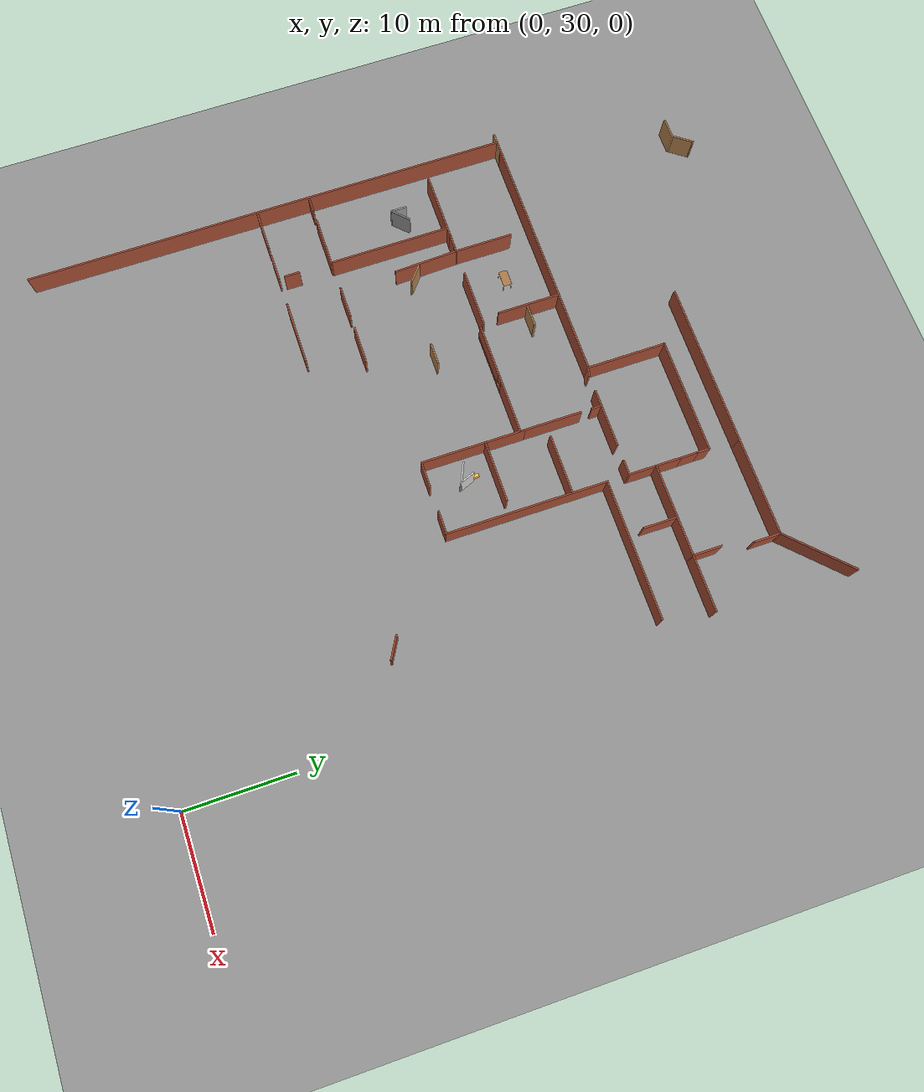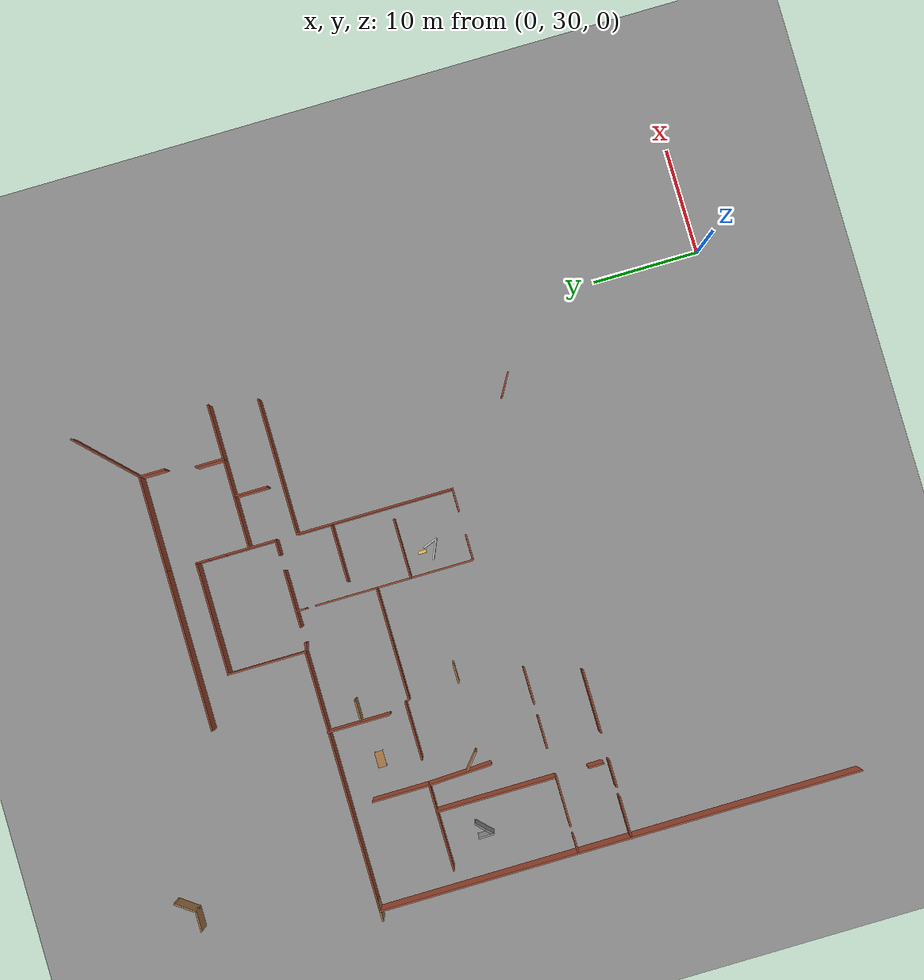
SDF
<sdf version="1.6">
 <world name="default">
  <model name="maze_rect_3">
   <pose>4e-06 -9.9e-05 0 0 -0 1.57001</pose>
   <link name="Wall_127">
    <collision name="Wall_127_Collision">
     <geometry><box><size>2.25 0.15 2.5</size></box></geometry>
     <pose>0 0 1.25 0 -0 0</pose>
    </collision>
    <visual name="Wall_127_Visual">
     <pose>0 0 1.25 0 -0 0</pose>
     <geometry><box><size>2.25 0.15 2.5</size></box></geometry>
     <material>
      <script><uri>file://media/materials/scripts/gazebo.material</uri><name>Gazebo/Bricks</name></script>
      <ambient>1 1 1 1</ambient>
     </material>
     <meta><layer>0</layer></meta>
    </visual>
    <pose>50.7967 7.04052 0 0 -0 -2.0944</pose>
   </link>
   <static>1</static>
  </model>
  <model name="map_palace_v2_model_1">
   <pose>0 60 0 0 -0 0</pose>
   <link name="Wall_10">
    <collision name="Wall_10_Collision">
     <geometry><box><size>7.5 0.15 2.5</size></box></geometry>
     <pose>0 0 1.25 0 -0 0</pose>
    </collision>
    <visual name="Wall_10_Visual">
     <pose>0 0 1.25 0 -0 0</pose>
     <geometry><box><size>7.5 0.15 2.5</size></box></geometry>
     <material>
      <script><uri>file://media/materials/scripts/gazebo.material</uri><name>Gazebo/Bricks</name></script>
      <ambient>1 1 1 1</ambient>
     </material>
     <meta><layer>0</layer></meta>
    </visual>
    <pose>-25.5193 18.9225 0 0 -0 -1.5708</pose>
   </link>
   <link name="Wall_11">
    <collision name="Wall_11_Collision">
     <geometry><box><size>24.75 0.15 2.5</size></box></geometry>
     <pose>0 0 1.25 0 -0 0</pose>
    </collision>
    <visual name="Wall_11_Visual">
     <pose>0 0 1.25 0 -0 0</pose>
     <geometry><box><size>24.75 0.15 2.5</size></box></geometry>
     <material>
      <script><uri>file://media/materials/scripts/gazebo.material</uri><name>Gazebo/Bricks</name></script>
      <ambient>1 1 1 1</ambient>
     </material>
     <meta><layer>0</layer></meta>
    </visual>
    <pose>-37.8193 15.2475 0 0 -0 3.14159</pose>
   </link>
   <link name="Wall_12">
    <collision name="Wall_12_Collision">
     <geometry><box><size>46 0.15 2.5</size></box></geometry>
     <pose>0 0 1.25 0 -0 0</pose>
    </collision>
    <visual name="Wall_12_Visual">
     <pose>0 0 1.25 0 -0 0</pose>
     <geometry><box><size>46 0.15 2.5</size></box></geometry>
     <material>
      <script><uri>file://media/materials/scripts/gazebo.material</uri><name>Gazebo/Bricks</name></script>
      <ambient>1 1 1 1</ambient>
     </material>
     <meta><layer>0</layer></meta>
    </visual>
    <pose>-50.1193 -7.67754 0 0 -0 -1.5708</pose>
   </link>
   <link name="Wall_123">
    <collision name="Wall_123_Collision">
     <geometry><box><size>2.5 0.15 2.5</size></box></geometry>
     <pose>0 0 1.25 0 -0 0</pose>
    </collision>
    <visual name="Wall_123_Visual">
     <pose>0 0 1.25 0 -0 0</pose>
     <geometry><box><size>2.5 0.15 2.5</size></box></geometry>
     <material>
      <script><uri>file://media/materials/scripts/gazebo.material</uri><name>Gazebo/Bricks</name></script>
      <ambient>1 1 1 1</ambient>
     </material>
     <meta><layer>0</layer></meta>
    </visual>
    <pose>-44.0769 -8.67053 0 0 -0 3.14159</pose>
   </link>
   <link name="Wall_125">
    <collision name="Wall_125_Collision">
     <geometry><box><size>3.75 0.15 2.5</size></box></geometry>
     <pose>0 0 1.25 0 -0 0</pose>
    </collision>
    <visual name="Wall_125_Visual">
     <pose>0 0 1.25 0 -0 0</pose>
     <geometry><box><size>3.75 0.15 2.5</size></box></geometry>
     <material>
      <script><uri>file://media/materials/scripts/gazebo.material</uri><name>Gazebo/Bricks</name></script>
      <ambient>1 1 1 1</ambient>
     </material>
     <meta><layer>0</layer></meta>
    </visual>
    <pose>-48.152 -8.67053 0 0 -0 3.14159</pose>
   </link>
   <link name="Wall_132">
    <collision name="Wall_132_Collision">
     <geometry><box><size>1.5 0.15 2.5</size></box></geometry>
     <pose>0 0 1.25 0 -0 0</pose>
    </collision>
    <visual name="Wall_132_Visual">
     <pose>0 0 1.25 0 -0 0</pose>
     <geometry><box><size>1.5 0.15 2.5</size></box></geometry>
     <material>
      <script><uri>file://media/materials/scripts/gazebo.material</uri><name>Gazebo/Bricks</name></script>
      <ambient>1 1 1 1</ambient>
     </material>
     <meta><layer>0</layer></meta>
    </visual>
    <pose>-42.9077 -7.40915 0 0 -0 1.5708</pose>
   </link>
   <link name="Wall_136">
    <collision name="Wall_136_Collision">
     <geometry><box><size>4.75 0.15 2.5</size></box></geometry>
     <pose>0 0 1.25 0 -0 0</pose>
    </collision>
    <visual name="Wall_136_Visual">
     <pose>0 0 1.25 0 -0 0</pose>
     <geometry><box><size>4.75 0.15 2.5</size></box></geometry>
     <material>
      <script><uri>file://media/materials/scripts/gazebo.material</uri><name>Gazebo/Bricks</name></script>
      <ambient>1 1 1 1</ambient>
     </material>
     <meta><layer>0</layer></meta>
    </visual>
    <pose>-45.2077 -3.61102 0 0 -0 3.14159</pose>
   </link>
   <link name="Wall_138">
    <collision name="Wall_138_Collision">
     <geometry><box><size>1.5 0.15 2.5</size></box></geometry>
     <pose>0 0 1.25 0 -0 0</pose>
    </collision>
    <visual name="Wall_138_Visual">
     <pose>0 0 1.25 0 -0 0</pose>
     <geometry><box><size>1.5 0.15 2.5</size></box></geometry>
     <material>
      <script><uri>file://media/materials/scripts/gazebo.material</uri><name>Gazebo/Bricks</name></script>
      <ambient>1 1 1 1</ambient>
     </material>
     <meta><layer>0</layer></meta>
    </visual>
    <pose>-49.2827 -3.61102 0 0 -0 3.14159</pose>
   </link>
   <link name="Wall_177">
    <collision name="Wall_177_Collision">
     <geometry><box><size>6 0.15 2.5</size></box></geometry>
     <pose>0 0 1.25 0 -0 0</pose>
    </collision>
    <visual name="Wall_177_Visual">
     <pose>0 0 1.25 0 -0 0</pose>
     <geometry><box><size>6 0.15 2.5</size></box></geometry>
     <material>
      <script><uri>file://media/materials/scripts/gazebo.material</uri><name>Gazebo/Bricks</name></script>
      <ambient>1 1 1 1</ambient>
     </material>
     <meta><layer>0</layer></meta>
    </visual>
    <pose>-37.1927 -8.68734 0 0 -0 0</pose>
   </link>
   <link name="Wall_179">
    <collision name="Wall_179_Collision">
     <geometry><box><size>3.5 0.15 2.5</size></box></geometry>
     <pose>0 0 1.25 0 -0 0</pose>
    </collision>
    <visual name="Wall_179_Visual">
     <pose>0 0 1.25 0 -0 0</pose>
     <geometry><box><size>3.5 0.15 2.5</size></box></geometry>
     <material>
      <script><uri>file://media/materials/scripts/gazebo.material</uri><name>Gazebo/Bricks</name></script>
      <ambient>1 1 1 1</ambient>
     </material>
     <meta><layer>0</layer></meta>
    </visual>
    <pose>-34.228 -3.55604 0 0 -0 3.14159</pose>
   </link>
   <link name="Wall_18">
    <collision name="Wall_18_Collision">
     <geometry><box><size>9.75 0.15 2.5</size></box></geometry>
     <pose>0 0 1.25 0 -0 0</pose>
    </collision>
    <visual name="Wall_18_Visual">
     <pose>0 0 1.25 0 -0 0</pose>
     <geometry><box><size>9.75 0.15 2.5</size></box></geometry>
     <material>
      <script><uri>file://media/materials/scripts/gazebo.material</uri><name>Gazebo/Bricks</name></script>
      <ambient>1 1 1 1</ambient>
     </material>
     <meta><layer>0</layer></meta>
    </visual>
    <pose>-21.7193 2.94746 0 0 -0 -1.5708</pose>
   </link>
   <link name="Wall_181">
    <collision name="Wall_181_Collision">
     <geometry><box><size>3 0.15 2.5</size></box></geometry>
     <pose>0 0 1.25 0 -0 0</pose>
    </collision>
    <visual name="Wall_181_Visual">
     <pose>0 0 1.25 0 -0 0</pose>
     <geometry><box><size>3 0.15 2.5</size></box></geometry>
     <material>
      <script><uri>file://media/materials/scripts/gazebo.material</uri><name>Gazebo/Bricks</name></script>
      <ambient>1 1 1 1</ambient>
     </material>
     <meta><layer>0</layer></meta>
    </visual>
    <pose>-38.678 -3.55604 0 0 -0 3.14159</pose>
   </link>
   <link name="Wall_19">
    <collision name="Wall_19_Collision">
     <geometry><box><size>2.5 0.15 2.5</size></box></geometry>
     <pose>0 0 1.25 0 -0 0</pose>
    </collision>
    <visual name="Wall_19_Visual">
     <pose>0 0 1.25 0 -0 0</pose>
     <geometry><box><size>2.5 0.15 2.5</size></box></geometry>
     <material>
      <script><uri>file://media/materials/scripts/gazebo.material</uri><name>Gazebo/Bricks</name></script>
      <ambient>1 1 1 1</ambient>
     </material>
     <meta><layer>0</layer></meta>
    </visual>
    <pose>-20.5443 -1.85254 0 0 -0 0</pose>
   </link>
   <link name="Wall_191">
    <collision name="Wall_191_Collision">
     <geometry><box><size>6.09813 0.15 2.5</size></box></geometry>
     <pose>0 0 1.25 0 -0 0</pose>
    </collision>
    <visual name="Wall_191_Visual">
     <pose>0 0 1.25 0 -0 0</pose>
     <geometry><box><size>6.09813 0.15 2.5</size></box></geometry>
     <material>
      <script><uri>file://media/materials/scripts/gazebo.material</uri><name>Gazebo/Bricks</name></script>
      <ambient>1 1 1 1</ambient>
     </material>
     <meta><layer>0</layer></meta>
    </visual>
    <pose>-40.2476 4.77589 0 0 -0 1.61175</pose>
   </link>
   <link name="Wall_196">
    <collision name="Wall_196_Collision">
     <geometry><box><size>5.5 0.15 2.5</size></box></geometry>
     <pose>0 0 1.25 0 -0 0</pose>
    </collision>
    <visual name="Wall_196_Visual">
     <pose>0 0 1.25 0 -0 0</pose>
     <geometry><box><size>5.5 0.15 2.5</size></box></geometry>
     <material>
      <script><uri>file://media/materials/scripts/gazebo.material</uri><name>Gazebo/Bricks</name></script>
      <ambient>1 1 1 1</ambient>
     </material>
     <meta><layer>0</layer></meta>
    </visual>
    <pose>-17.7024 9.73922 0 0 -0 0</pose>
   </link>
   <link name="Wall_198">
    <collision name="Wall_198_Collision">
     <geometry><box><size>5.75 0.15 2.5</size></box></geometry>
     <pose>0 0 1.25 0 -0 0</pose>
    </collision>
    <visual name="Wall_198_Visual">
     <pose>0 0 1.25 0 -0 0</pose>
     <geometry><box><size>5.75 0.15 2.5</size></box></geometry>
     <material>
      <script><uri>file://media/materials/scripts/gazebo.material</uri><name>Gazebo/Bricks</name></script>
      <ambient>1 1 1 1</ambient>
     </material>
     <meta><layer>0</layer></meta>
    </visual>
    <pose>-18.9274 4.09535 0 0 -0 0</pose>
   </link>
   <link name="Wall_200">
    <collision name="Wall_200_Collision">
     <geometry><box><size>5 0.15 2.5</size></box></geometry>
     <pose>0 0 1.25 0 -0 0</pose>
    </collision>
    <visual name="Wall_200_Visual">
     <pose>0 0 1.25 0 -0 0</pose>
     <geometry><box><size>5 0.15 2.5</size></box></geometry>
     <material>
      <script><uri>file://media/materials/scripts/gazebo.material</uri><name>Gazebo/Bricks</name></script>
      <ambient>1 1 1 1</ambient>
     </material>
     <meta><layer>0</layer></meta>
    </visual>
    <pose>-12.4131 17.5809 0 0 -0 0</pose>
   </link>
   <link name="Wall_201">
    <collision name="Wall_201_Collision">
     <geometry><box><size>3.25 0.15 2.5</size></box></geometry>
     <pose>0 0 1.25 0 -0 0</pose>
    </collision>
    <visual name="Wall_201_Visual">
     <pose>0 0 1.25 0 -0 0</pose>
     <geometry><box><size>3.25 0.15 2.5</size></box></geometry>
     <material>
      <script><uri>file://media/materials/scripts/gazebo.material</uri><name>Gazebo/Bricks</name></script>
      <ambient>1 1 1 1</ambient>
     </material>
     <meta><layer>0</layer></meta>
    </visual>
    <pose>-9.98806 16.0309 0 0 -0 -1.5708</pose>
   </link>
   <link name="Wall_203">
    <collision name="Wall_203_Collision">
     <geometry><box><size>3.75 0.15 2.5</size></box></geometry>
     <pose>0 0 1.25 0 -0 0</pose>
    </collision>
    <visual name="Wall_203_Visual">
     <pose>0 0 1.25 0 -0 0</pose>
     <geometry><box><size>3.75 0.15 2.5</size></box></geometry>
     <material>
      <script><uri>file://media/materials/scripts/gazebo.material</uri><name>Gazebo/Bricks</name></script>
      <ambient>1 1 1 1</ambient>
     </material>
     <meta><layer>0</layer></meta>
    </visual>
    <pose>-8.18806 17.5809 0 0 -0 0</pose>
   </link>
   <link name="Wall_204">
    <collision name="Wall_204_Collision">
     <geometry><box><size>2.75 0.15 2.5</size></box></geometry>
     <pose>0 0 1.25 0 -0 0</pose>
    </collision>
    <visual name="Wall_204_Visual">
     <pose>0 0 1.25 0 -0 0</pose>
     <geometry><box><size>2.75 0.15 2.5</size></box></geometry>
     <material>
      <script><uri>file://media/materials/scripts/gazebo.material</uri><name>Gazebo/Bricks</name></script>
      <ambient>1 1 1 1</ambient>
     </material>
     <meta><layer>0</layer></meta>
    </visual>
    <pose>-6.38806 18.8809 0 0 -0 1.5708</pose>
   </link>
   <link name="Wall_206">
    <collision name="Wall_206_Collision">
     <geometry><box><size>5.25 0.15 2.5</size></box></geometry>
     <pose>0 0 1.25 0 -0 0</pose>
    </collision>
    <visual name="Wall_206_Visual">
     <pose>0 0 1.25 0 -0 0</pose>
     <geometry><box><size>5.25 0.15 2.5</size></box></geometry>
     <material>
      <script><uri>file://media/materials/scripts/gazebo.material</uri><name>Gazebo/Bricks</name></script>
      <ambient>1 1 1 1</ambient>
     </material>
     <meta><layer>0</layer></meta>
    </visual>
    <pose>-3.83806 17.5809 0 0 -0 0</pose>
   </link>
   <link name="Wall_21">
    <collision name="Wall_21_Collision">
     <geometry><box><size>2.25 0.15 2.5</size></box></geometry>
     <pose>0 0 1.25 0 -0 0</pose>
    </collision>
    <visual name="Wall_21_Visual">
     <pose>0 0 1.25 0 -0 0</pose>
     <geometry><box><size>2.25 0.15 2.5</size></box></geometry>
     <material>
      <script><uri>file://media/materials/scripts/gazebo.material</uri><name>Gazebo/Bricks</name></script>
      <ambient>1 1 1 1</ambient>
     </material>
     <meta><layer>0</layer></meta>
    </visual>
    <pose>-15.9693 -1.85254 0 0 -0 0</pose>
   </link>
   <link name="Wall_22">
    <collision name="Wall_22_Collision">
     <geometry><box><size>15 0.15 2.5</size></box></geometry>
     <pose>0 0 1.25 0 -0 0</pose>
    </collision>
    <visual name="Wall_22_Visual">
     <pose>0 0 1.25 0 -0 0</pose>
     <geometry><box><size>15 0.15 2.5</size></box></geometry>
     <material>
      <script><uri>file://media/materials/scripts/gazebo.material</uri><name>Gazebo/Bricks</name></script>
      <ambient>1 1 1 1</ambient>
     </material>
     <meta><layer>0</layer></meta>
    </visual>
    <pose>-14.9193 5.57246 0 0 -0 1.5708</pose>
   </link>
   <link name="Wall_23">
    <collision name="Wall_23_Collision">
     <geometry><box><size>13 0.15 2.5</size></box></geometry>
     <pose>0 0 1.25 0 -0 0</pose>
    </collision>
    <visual name="Wall_23_Visual">
     <pose>0 0 1.25 0 -0 0</pose>
     <geometry><box><size>13 0.15 2.5</size></box></geometry>
     <material>
      <script><uri>file://media/materials/scripts/gazebo.material</uri><name>Gazebo/Bricks</name></script>
      <ambient>1 1 1 1</ambient>
     </material>
     <meta><layer>0</layer></meta>
    </visual>
    <pose>-8.49431 12.9975 0 0 -0 0</pose>
   </link>
   <link name="Wall_238">
    <collision name="Wall_238_Collision">
     <geometry><box><size>2.5 0.15 2.5</size></box></geometry>
     <pose>0 0 1.25 0 -0 0</pose>
    </collision>
    <visual name="Wall_238_Visual">
     <pose>0 0 1.25 0 -0 0</pose>
     <geometry><box><size>2.5 0.15 2.5</size></box></geometry>
     <material>
      <script><uri>file://media/materials/scripts/gazebo.material</uri><name>Gazebo/Bricks</name></script>
      <ambient>1 1 1 1</ambient>
     </material>
     <meta><layer>0</layer></meta>
    </visual>
    <pose>-5.81931 24.2725 0 0 -0 -1.5708</pose>
   </link>
   <link name="Wall_312">
    <pose>-27.0518 7.36745 0 0 -0 3.14159</pose>
    <visual name="Wall_312_Visual_0">
     <pose>-2.88797 0 1.25 0 -0 0</pose>
     <geometry><box><size>4.97407 0.15 2.5</size></box></geometry>
     <material>
      <script><uri>file://media/materials/scripts/gazebo.material</uri><name>Gazebo/Bricks</name></script>
      <ambient>1 1 1 1</ambient>
     </material>
     <meta><layer>0</layer></meta>
    </visual>
    <collision name="Wall_312_Collision_0">
     <geometry><box><size>4.97407 0.15 2.5</size></box></geometry>
     <pose>-2.88797 0 1.25 0 -0 0</pose>
    </collision>
    <visual name="Wall_312_Visual_1">
     <pose>2.48703 0 0.25 0 -0 0</pose>
     <geometry><box><size>5.77593 0.15 0.5</size></box></geometry>
     <material>
      <script><uri>file://media/materials/scripts/gazebo.material</uri><name>Gazebo/Bricks</name></script>
      <ambient>1 1 1 1</ambient>
     </material>
     <meta><layer>0</layer></meta>
    </visual>
    <collision name="Wall_312_Collision_1">
     <geometry><box><size>5.77593 0.15 0.5</size></box></geometry>
     <pose>2.48703 0 0.25 0 -0 0</pose>
    </collision>
    <visual name="Wall_312_Visual_2">
     <pose>2.88703 0 1.5 0 -0 0</pose>
     <geometry><box><size>4.97593 0.15 2</size></box></geometry>
     <material>
      <script><uri>file://media/materials/scripts/gazebo.material</uri><name>Gazebo/Bricks</name></script>
      <ambient>1 1 1 1</ambient>
     </material>
     <meta><layer>0</layer></meta>
    </visual>
    <collision name="Wall_312_Collision_2">
     <geometry><box><size>4.97593 0.15 2</size></box></geometry>
     <pose>2.88703 0 1.5 0 -0 0</pose>
    </collision>
    <visual name="Wall_312_Visual_3">
     <pose>-0.000933 0 1.9 0 -0 0</pose>
     <geometry><box><size>0.8 0.15 1.2</size></box></geometry>
     <material>
      <script><uri>file://media/materials/scripts/gazebo.material</uri><name>Gazebo/Bricks</name></script>
      <ambient>1 1 1 1</ambient>
     </material>
     <meta><layer>0</layer></meta>
    </visual>
    <collision name="Wall_312_Collision_3">
     <geometry><box><size>0.8 0.15 1.2</size></box></geometry>
     <pose>-0.000933 0 1.9 0 -0 0</pose>
    </collision>
   </link>
   <link name="Wall_44">
    <collision name="Wall_44_Collision">
     <geometry><box><size>15.25 0.15 2.5</size></box></geometry>
     <pose>0 0 1.25 0 -0 0</pose>
    </collision>
    <visual name="Wall_44_Visual">
     <pose>0 0 1.25 0 -0 0</pose>
     <geometry><box><size>15.25 0.15 2.5</size></box></geometry>
     <material>
      <script><uri>file://media/materials/scripts/gazebo.material</uri><name>Gazebo/Bricks</name></script>
      <ambient>1 1 1 1</ambient>
     </material>
     <meta><layer>0</layer></meta>
    </visual>
    <pose>-22.4693 25.4475 0 0 -0 3.14159</pose>
   </link>
   <link name="Wall_51">
    <collision name="Wall_51_Collision">
     <geometry><box><size>1.25 0.15 2.5</size></box></geometry>
     <pose>0 0 1.25 0 -0 0</pose>
    </collision>
    <visual name="Wall_51_Visual">
     <pose>0 0 1.25 0 -0 0</pose>
     <geometry><box><size>1.25 0.15 2.5</size></box></geometry>
     <material>
      <script><uri>file://media/materials/scripts/gazebo.material</uri><name>Gazebo/Bricks</name></script>
      <ambient>1 1 1 1</ambient>
     </material>
     <meta><layer>0</layer></meta>
    </visual>
    <pose>-14.9193 22.0475 0 0 -0 -1.5708</pose>
   </link>
   <link name="Wall_52">
    <collision name="Wall_52_Collision">
     <geometry><box><size>1.75 0.15 2.5</size></box></geometry>
     <pose>0 0 1.25 0 -0 0</pose>
    </collision>
    <visual name="Wall_52_Visual">
     <pose>0 0 1.25 0 -0 0</pose>
     <geometry><box><size>1.75 0.15 2.5</size></box></geometry>
     <material>
      <script><uri>file://media/materials/scripts/gazebo.material</uri><name>Gazebo/Bricks</name></script>
      <ambient>1 1 1 1</ambient>
     </material>
     <meta><layer>0</layer></meta>
    </visual>
    <pose>-14.9193 20.6975 0 0 -0 -1.5708</pose>
   </link>
   <link name="Wall_53">
    <collision name="Wall_53_Collision">
     <geometry><box><size>5 0.15 2.5</size></box></geometry>
     <pose>0 0 1.25 0 -0 0</pose>
    </collision>
    <visual name="Wall_53_Visual">
     <pose>0 0 1.25 0 -0 0</pose>
     <geometry><box><size>5 0.15 2.5</size></box></geometry>
     <material>
      <script><uri>file://media/materials/scripts/gazebo.material</uri><name>Gazebo/Bricks</name></script>
      <ambient>1 1 1 1</ambient>
     </material>
     <meta><layer>0</layer></meta>
    </visual>
    <pose>-14.9193 17.4725 0 0 -0 -1.5708</pose>
   </link>
   <link name="Wall_54">
    <collision name="Wall_54_Collision">
     <geometry><box><size>1.5 0.15 2.5</size></box></geometry>
     <pose>0 0 1.25 0 -0 0</pose>
    </collision>
    <visual name="Wall_54_Visual">
     <pose>0 0 1.25 0 -0 0</pose>
     <geometry><box><size>1.5 0.15 2.5</size></box></geometry>
     <material>
      <script><uri>file://media/materials/scripts/gazebo.material</uri><name>Gazebo/Bricks</name></script>
      <ambient>1 1 1 1</ambient>
     </material>
     <meta><layer>0</layer></meta>
    </visual>
    <pose>-15.5943 15.0475 0 0 -0 3.14159</pose>
   </link>
   <link name="Wall_58">
    <collision name="Wall_58_Collision">
     <geometry><box><size>5.5 0.15 2.5</size></box></geometry>
     <pose>0 0 1.25 0 -0 0</pose>
    </collision>
    <visual name="Wall_58_Visual">
     <pose>0 0 1.25 0 -0 0</pose>
     <geometry><box><size>5.5 0.15 2.5</size></box></geometry>
     <material>
      <script><uri>file://media/materials/scripts/gazebo.material</uri><name>Gazebo/Bricks</name></script>
      <ambient>1 1 1 1</ambient>
     </material>
     <meta><layer>0</layer></meta>
    </visual>
    <pose>-20.5061 15.044 0 0 -0 3.14159</pose>
   </link>
   <link name="Wall_6">
    <collision name="Wall_6_Collision">
     <geometry><box><size>7.25 0.15 2.5</size></box></geometry>
     <pose>0 0 1.25 0 -0 0</pose>
    </collision>
    <visual name="Wall_6_Visual">
     <pose>0 0 1.25 0 -0 0</pose>
     <geometry><box><size>7.25 0.15 2.5</size></box></geometry>
     <material>
      <script><uri>file://media/materials/scripts/gazebo.material</uri><name>Gazebo/Bricks</name></script>
      <ambient>1 1 1 1</ambient>
     </material>
     <meta><layer>0</layer></meta>
    </visual>
    <pose>-3.30908 27.9577 0 0 -0 -2.35619</pose>
   </link>
   <link name="Wall_60">
    <collision name="Wall_60_Collision">
     <geometry><box><size>1 0.15 2.5</size></box></geometry>
     <pose>0 0 1.25 0 -0 0</pose>
    </collision>
    <visual name="Wall_60_Visual">
     <pose>0 0 1.25 0 -0 0</pose>
     <geometry><box><size>1 0.15 2.5</size></box></geometry>
     <material>
      <script><uri>file://media/materials/scripts/gazebo.material</uri><name>Gazebo/Bricks</name></script>
      <ambient>1 1 1 1</ambient>
     </material>
     <meta><layer>0</layer></meta>
    </visual>
    <pose>-25.1916 15.154 0 0 -0 2.87979</pose>
   </link>
   <link name="Wall_66">
    <collision name="Wall_66_Collision">
     <geometry><box><size>5.5 0.15 2.5</size></box></geometry>
     <pose>0 0 1.25 0 -0 0</pose>
    </collision>
    <visual name="Wall_66_Visual">
     <pose>0 0 1.25 0 -0 0</pose>
     <geometry><box><size>5.5 0.15 2.5</size></box></geometry>
     <material>
      <script><uri>file://media/materials/scripts/gazebo.material</uri><name>Gazebo/Bricks</name></script>
      <ambient>1 1 1 1</ambient>
     </material>
     <meta><layer>0</layer></meta>
    </visual>
    <pose>-21.7193 10.4225 0 0 -0 1.5708</pose>
   </link>
   <link name="Wall_68">
    <collision name="Wall_68_Collision">
     <geometry><box><size>1 0.15 2.5</size></box></geometry>
     <pose>0 0 1.25 0 -0 0</pose>
    </collision>
    <visual name="Wall_68_Visual">
     <pose>0 0 1.25 0 -0 0</pose>
     <geometry><box><size>1 0.15 2.5</size></box></geometry>
     <material>
      <script><uri>file://media/materials/scripts/gazebo.material</uri><name>Gazebo/Bricks</name></script>
      <ambient>1 1 1 1</ambient>
     </material>
     <meta><layer>0</layer></meta>
    </visual>
    <pose>-21.7193 14.6225 0 0 -0 1.5708</pose>
   </link>
   <link name="Wall_7">
    <collision name="Wall_7_Collision">
     <geometry><box><size>9.25 0.15 2.5</size></box></geometry>
     <pose>0 0 1.25 0 -0 0</pose>
    </collision>
    <visual name="Wall_7_Visual">
     <pose>0 0 1.25 0 -0 0</pose>
     <geometry><box><size>9.25 0.15 2.5</size></box></geometry>
     <material>
      <script><uri>file://media/materials/scripts/gazebo.material</uri><name>Gazebo/Bricks</name></script>
      <ambient>1 1 1 1</ambient>
     </material>
     <meta><layer>0</layer></meta>
    </visual>
    <pose>-10.3693 25.4475 0 0 -0 3.14159</pose>
   </link>
   <link name="Wall_70">
    <collision name="Wall_70_Collision">
     <geometry><box><size>6 0.15 2.5</size></box></geometry>
     <pose>0 0 1.25 0 -0 0</pose>
    </collision>
    <visual name="Wall_70_Visual">
     <pose>0 0 1.25 0 -0 0</pose>
     <geometry><box><size>6 0.15 2.5</size></box></geometry>
     <material>
      <script><uri>file://media/materials/scripts/gazebo.material</uri><name>Gazebo/Bricks</name></script>
      <ambient>1 1 1 1</ambient>
     </material>
     <meta><layer>0</layer></meta>
    </visual>
    <pose>-33.1638 12.3617 0 0 -0 -1.5708</pose>
   </link>
   <link name="Wall_76">
    <collision name="Wall_76_Collision">
     <geometry><box><size>5.5 0.15 2.5</size></box></geometry>
     <pose>0 0 1.25 0 -0 0</pose>
    </collision>
    <visual name="Wall_76_Visual">
     <pose>0 0 1.25 0 -0 0</pose>
     <geometry><box><size>5.5 0.15 2.5</size></box></geometry>
     <material>
      <script><uri>file://media/materials/scripts/gazebo.material</uri><name>Gazebo/Bricks</name></script>
      <ambient>1 1 1 1</ambient>
     </material>
     <meta><layer>0</layer></meta>
    </visual>
    <pose>-35.2443 7.74746 0 0 -0 3.14159</pose>
   </link>
   <link name="Wall_81">
    <collision name="Wall_81_Collision">
     <geometry><box><size>5.5 0.15 2.5</size></box></geometry>
     <pose>0 0 1.25 0 -0 0</pose>
    </collision>
    <visual name="Wall_81_Visual">
     <pose>0 0 1.25 0 -0 0</pose>
     <geometry><box><size>5.5 0.15 2.5</size></box></geometry>
     <material>
      <script><uri>file://media/materials/scripts/gazebo.material</uri><name>Gazebo/Bricks</name></script>
      <ambient>1 1 1 1</ambient>
     </material>
     <meta><layer>0</layer></meta>
    </visual>
    <pose>-40.3693 10.4225 0 0 -0 1.5708</pose>
   </link>
   <link name="Wall_85">
    <collision name="Wall_85_Collision">
     <geometry><box><size>0.740436 0.15 2.5</size></box></geometry>
     <pose>0 0 1.25 0 -0 0</pose>
    </collision>
    <visual name="Wall_85_Visual">
     <pose>0 0 1.25 0 -0 0</pose>
     <geometry><box><size>0.740436 0.15 2.5</size></box></geometry>
     <material>
      <script><uri>file://media/materials/scripts/gazebo.material</uri><name>Gazebo/Bricks</name></script>
      <ambient>1 1 1 1</ambient>
     </material>
     <meta><layer>0</layer></meta>
    </visual>
    <pose>-40.6644 7.75724 0 0 -0 3.10847</pose>
   </link>
   <link name="Wall_88">
    <collision name="Wall_88_Collision">
     <geometry><box><size>6.50992 0.15 2.5</size></box></geometry>
     <pose>0 0 1.25 0 -0 0</pose>
    </collision>
    <visual name="Wall_88_Visual">
     <pose>0 0 1.25 0 -0 0</pose>
     <geometry><box><size>6.50992 0.15 2.5</size></box></geometry>
     <material>
      <script><uri>file://media/materials/scripts/gazebo.material</uri><name>Gazebo/Bricks</name></script>
      <ambient>1 1 1 1</ambient>
     </material>
     <meta><layer>0</layer></meta>
    </visual>
    <pose>-45.2394 7.75724 0 0 -0 -3.13852</pose>
   </link>
   <link name="Wall_9">
    <collision name="Wall_9_Collision">
     <geometry><box><size>10.75 0.15 2.5</size></box></geometry>
     <pose>0 0 1.25 0 -0 0</pose>
    </collision>
    <visual name="Wall_9_Visual">
     <pose>0 0 1.25 0 -0 0</pose>
     <geometry><box><size>10.75 0.15 2.5</size></box></geometry>
     <material>
      <script><uri>file://media/materials/scripts/gazebo.material</uri><name>Gazebo/Bricks</name></script>
      <ambient>1 1 1 1</ambient>
     </material>
     <meta><layer>0</layer></meta>
    </visual>
    <pose>-20.2193 22.5975 0 0 -0 3.14159</pose>
   </link>
   <link name="Wall_92">
    <collision name="Wall_92_Collision">
     <geometry><box><size>1.25 0.15 2.5</size></box></geometry>
     <pose>0 0 1.25 0 -0 0</pose>
    </collision>
    <visual name="Wall_92_Visual">
     <pose>0 0 1.25 0 -0 0</pose>
     <geometry><box><size>1.25 0.15 2.5</size></box></geometry>
     <material>
      <script><uri>file://media/materials/scripts/gazebo.material</uri><name>Gazebo/Bricks</name></script>
      <ambient>1 1 1 1</ambient>
     </material>
     <meta><layer>0</layer></meta>
    </visual>
    <pose>-41.4995 7.75713 0 0 -0 3.14159</pose>
   </link>
   <link name="Wall_96">
    <collision name="Wall_96_Collision">
     <geometry><box><size>11.5 0.15 2.5</size></box></geometry>
     <pose>0 0 1.25 0 -0 0</pose>
    </collision>
    <visual name="Wall_96_Visual">
     <pose>0 0 1.25 0 -0 0</pose>
     <geometry><box><size>11.5 0.15 2.5</size></box></geometry>
     <material>
      <script><uri>file://media/materials/scripts/gazebo.material</uri><name>Gazebo/Bricks</name></script>
      <ambient>1 1 1 1</ambient>
     </material>
     <meta><layer>0</layer></meta>
    </visual>
    <pose>-42.9077 2.06398 0 0 -0 -1.5708</pose>
   </link>
   <static>1</static>
  </model>
  <model name="v_wall_1_1">
   <pose>-19.7435 61.2621 0 0 -0 0.363815</pose>
   <link name="Wall_0">
    <collision name="Wall_0_Collision">
     <geometry><box><size>2 0.15 2.5</size></box></geometry>
     <pose>0 0 1.25 0 -0 0</pose>
    </collision>
    <visual name="Wall_0_Visual">
     <pose>0 0 1.25 0 -0 0</pose>
     <geometry><box><size>2 0.15 2.5</size></box></geometry>
     <material>
      <script><uri>file://media/materials/scripts/gazebo.material</uri><name>Gazebo/CeilingTiled</name></script>
      <ambient>1 1 1 1</ambient>
     </material>
     <meta><layer>0</layer></meta>
    </visual>
    <pose>0 -0.005393 0 0 -0 -0.785398</pose>
   </link>
   <link name="Wall_1">
    <collision name="Wall_1_Collision">
     <geometry><box><size>1.5 0.15 2.5</size></box></geometry>
     <pose>0 0 1.25 0 -0 0</pose>
    </collision>
    <visual name="Wall_1_Visual">
     <pose>0 0 1.25 0 -0 0</pose>
     <geometry><box><size>1.5 0.15 2.5</size></box></geometry>
     <material>
      <script><uri>file://media/materials/scripts/gazebo.material</uri><name>Gazebo/CeilingTiled</name></script>
      <ambient>1 1 1 1</ambient>
     </material>
     <meta><layer>0</layer></meta>
    </visual>
    <pose>0.654074 0.015533 0 0 -0 1.5708</pose>
   </link>
   <static>1</static>
  </model>
  <model name="v_wall_2_1">
   <pose>-45.6016 64.0144 0 0 -0 0</pose>
   <link name="Wall_3">
    <collision name="Wall_3_Collision">
     <geometry><box><size>2 0.15 2.5</size></box></geometry>
     <pose>0 0 1.25 0 -0 0</pose>
    </collision>
    <visual name="Wall_3_Visual">
     <pose>0 0 1.25 0 -0 0</pose>
     <geometry><box><size>2 0.15 2.5</size></box></geometry>
     <material>
      <script><uri>file://media/materials/scripts/gazebo.material</uri><name>Gazebo/Grey</name></script>
      <ambient>1 1 1 1</ambient>
     </material>
     <meta><layer>0</layer></meta>
    </visual>
    <pose>0 -0.005393 0 0 -0 0.785398</pose>
   </link>
   <link name="Wall_5">
    <collision name="Wall_5_Collision">
     <geometry><box><size>1.5 0.15 2.5</size></box></geometry>
     <pose>0 0 1.25 0 -0 0</pose>
    </collision>
    <visual name="Wall_5_Visual">
     <pose>0 0 1.25 0 -0 0</pose>
     <geometry><box><size>1.5 0.15 2.5</size></box></geometry>
     <material>
      <script><uri>file://media/materials/scripts/gazebo.material</uri><name>Gazebo/Grey</name></script>
      <ambient>1 1 1 1</ambient>
     </material>
     <meta><layer>0</layer></meta>
    </visual>
    <pose>-0.654074 0.015533 0 0 -0 1.5708</pose>
   </link>
   <static>1</static>
  </model>
  <model name="wall_3">
   <pose>-31.2073 62.5586 0 0 -0 0</pose>
   <link name="Wall_2">
    <collision name="Wall_2_Collision">
     <geometry><box><size>2 0.15 2.5</size></box></geometry>
     <pose>0 0 1.25 0 -0 0</pose>
    </collision>
    <visual name="Wall_2_Visual">
     <pose>0 0 1.25 0 -0 0</pose>
     <geometry><box><size>2 0.15 2.5</size></box></geometry>
     <material>
      <script><uri>file://media/materials/scripts/gazebo.material</uri><name>Gazebo/Wood</name></script>
      <ambient>1 1 1 1</ambient>
     </material>
     <meta><layer>0</layer></meta>
    </visual>
    <pose>-0.005 -0 0 0 -0 0</pose>
   </link>
   <link name="Wall_3">
    <collision name="Wall_3_Collision">
     <geometry><box><size>0.16 0.15 2.5</size></box></geometry>
     <pose>0 0 1.25 0 -0 0</pose>
    </collision>
    <visual name="Wall_3_Visual">
     <pose>0 0 1.25 0 -0 0</pose>
     <geometry><box><size>0.16 0.15 2.5</size></box></geometry>
     <material>
      <script><uri>file://media/materials/scripts/gazebo.material</uri><name>Gazebo/Wood</name></script>
      <ambient>1 1 1 1</ambient>
     </material>
     <meta><layer>0</layer></meta>
    </visual>
    <pose>0.925 0 0 0 -0 0</pose>
   </link>
   <static>1</static>
  </model>
  <model name="table_2">
   <static>1</static>
   <link name="link">
    <collision name="surface">
     <pose>0 0 1 0 -0 0</pose>
     <geometry><box><size>1.5 0.8 0.03</size></box></geometry>
     <surface><friction><ode><mu>0.6</mu><mu2>0.6</mu2></ode></friction></surface>
    </collision>
    <visual name="visual1">
     <pose>0 0 1 0 -0 0</pose>
     <geometry><box><size>1.5 0.8 0.03</size></box></geometry>
     <material>
      <script><uri>file://media/materials/scripts/gazebo.material</uri><name>Gazebo/Wood</name></script>
     </material>
    </visual>
    <collision name="front_left_leg">
     <pose>0.68 0.38 0.5 0 -0 0</pose>
     <geometry><cylinder><radius>0.02</radius><length>1</length></cylinder></geometry>
    </collision>
    <visual name="front_left_leg">
     <pose>0.68 0.38 0.5 0 -0 0</pose>
     <geometry><cylinder><radius>0.02</radius><length>1</length></cylinder></geometry>
     <material>
      <script><uri>file://media/materials/scripts/gazebo.material</uri><name>Gazebo/Grey</name></script>
     </material>
    </visual>
    <collision name="front_right_leg">
     <pose>0.68 -0.38 0.5 0 -0 0</pose>
     <geometry><cylinder><radius>0.02</radius><length>1</length></cylinder></geometry>
    </collision>
    <visual name="front_right_leg">
     <pose>0.68 -0.38 0.5 0 -0 0</pose>
     <geometry><cylinder><radius>0.02</radius><length>1</length></cylinder></geometry>
     <material>
      <script><uri>file://media/materials/scripts/gazebo.material</uri><name>Gazebo/Grey</name></script>
     </material>
    </visual>
    <collision name="back_right_leg">
     <pose>-0.68 -0.38 0.5 0 -0 0</pose>
     <geometry><cylinder><radius>0.02</radius><length>1</length></cylinder></geometry>
    </collision>
    <visual name="back_right_leg">
     <pose>-0.68 -0.38 0.5 0 -0 0</pose>
     <geometry><cylinder><radius>0.02</radius><length>1</length></cylinder></geometry>
     <material>
      <script><uri>file://media/materials/scripts/gazebo.material</uri><name>Gazebo/Grey</name></script>
     </material>
    </visual>
    <collision name="back_left_leg">
     <pose>-0.68 0.38 0.5 0 -0 0</pose>
     <geometry><cylinder><radius>0.02</radius><length>1</length></cylinder></geometry>
    </collision>
    <visual name="back_left_leg">
     <pose>-0.68 0.38 0.5 0 -0 0</pose>
     <geometry><cylinder><radius>0.02</radius><length>1</length></cylinder></geometry>
     <material>
      <script><uri>file://media/materials/scripts/gazebo.material</uri><name>Gazebo/Grey</name></script>
     </material>
    </visual>
   </link>
   <pose>-36.9809 71.4813 0 0 -0 0</pose>
  </model>
  <model name="wall_11">
   <pose>-31.9563 72.1274 0 0 -0 0</pose>
   <link name="Wall_2">
    <collision name="Wall_2_Collision">
     <geometry><box><size>2 0.15 2.5</size></box></geometry>
     <pose>0 0 1.25 0 -0 0</pose>
    </collision>
    <visual name="Wall_2_Visual">
     <pose>0 0 1.25 0 -0 0</pose>
     <geometry><box><size>2 0.15 2.5</size></box></geometry>
     <material>
      <script><uri>file://media/materials/scripts/gazebo.material</uri><name>Gazebo/Wood</name></script>
      <ambient>1 1 1 1</ambient>
     </material>
     <meta><layer>0</layer></meta>
    </visual>
    <pose>-0.005 -0 0 0 -0 0</pose>
   </link>
   <link name="Wall_3">
    <collision name="Wall_3_Collision">
     <geometry><box><size>0.16 0.15 2.5</size></box></geometry>
     <pose>0 0 1.25 0 -0 0</pose>
    </collision>
    <visual name="Wall_3_Visual">
     <pose>0 0 1.25 0 -0 0</pose>
     <geometry><box><size>0.16 0.15 2.5</size></box></geometry>
     <material>
      <script><uri>file://media/materials/scripts/gazebo.material</uri><name>Gazebo/Wood</name></script>
      <ambient>1 1 1 1</ambient>
     </material>
     <meta><layer>0</layer></meta>
    </visual>
    <pose>0.925 0 0 0 -0 0</pose>
   </link>
   <static>1</static>
  </model>
  <model name="wall_12">
   <pose>-39.3501 63.4126 0 0 0 -0.702835</pose>
   <link name="Wall_2">
    <collision name="Wall_2_Collision">
     <geometry><box><size>2 0.15 2.5</size></box></geometry>
     <pose>0 0 1.25 0 -0 0</pose>
    </collision>
    <visual name="Wall_2_Visual">
     <pose>0 0 1.25 0 -0 0</pose>
     <geometry><box><size>2 0.15 2.5</size></box></geometry>
     <material>
      <script><uri>file://media/materials/scripts/gazebo.material</uri><name>Gazebo/Wood</name></script>
      <ambient>1 1 1 1</ambient>
     </material>
     <meta><layer>0</layer></meta>
    </visual>
    <pose>-0.005 -0 0 0 -0 0</pose>
   </link>
   <link name="Wall_3">
    <collision name="Wall_3_Collision">
     <geometry><box><size>0.16 0.15 2.5</size></box></geometry>
     <pose>0 0 1.25 0 -0 0</pose>
    </collision>
    <visual name="Wall_3_Visual">
     <pose>0 0 1.25 0 -0 0</pose>
     <geometry><box><size>0.16 0.15 2.5</size></box></geometry>
     <material>
      <script><uri>file://media/materials/scripts/gazebo.material</uri><name>Gazebo/Wood</name></script>
      <ambient>1 1 1 1</ambient>
     </material>
     <meta><layer>0</layer></meta>
    </visual>
    <pose>0.925 0 0 0 -0 0</pose>
   </link>
   <static>1</static>
  </model>
  <model name="ground_plane_3">
   <static>1</static>
   <link name="link">
    <collision name="collision">
     <geometry><plane><normal>0 0 1</normal><size>100 100</size></plane></geometry>
     <surface><friction><ode><mu>100</mu><mu2>50</mu2></ode></friction></surface>
    </collision>
    <visual name="visual">
     <cast_shadows>0</cast_shadows>
     <geometry><plane><normal>0 0 1</normal><size>100 100</size></plane></geometry>
     <material>
      <script><uri>file://media/materials/scripts/gazebo.material</uri><name>Gazebo/Grey</name></script>
     </material>
    </visual>
   </link>
   <pose>-2.22882 53.526 0 0 -0 0</pose>
  </model>
  <model name="wall_15">
   <pose>-46.351 91.402 0 0 -0 0</pose>
   <link name="Wall_2">
    <collision name="Wall_2_Collision">
     <geometry><box><size>2 0.15 2.5</size></box></geometry>
     <pose>0 0 1.25 0 -0 0</pose>
    </collision>
    <visual name="Wall_2_Visual">
     <pose>0 0 1.25 0 -0 0</pose>
     <geometry><box><size>2 0.15 2.5</size></box></geometry>
     <material>
      <script><uri>file://media/materials/scripts/gazebo.material</uri><name>Gazebo/Wood</name></script>
      <ambient>1 1 1 1</ambient>
     </material>
     <meta><layer>0</layer></meta>
    </visual>
    <pose>-0.005 -0 0 0 -0 0</pose>
   </link>
   <link name="Wall_3">
    <collision name="Wall_3_Collision">
     <geometry><box><size>0.16 0.15 2.5</size></box></geometry>
     <pose>0 0 1.25 0 -0 0</pose>
    </collision>
    <visual name="Wall_3_Visual">
     <pose>0 0 1.25 0 -0 0</pose>
     <geometry><box><size>0.16 0.15 2.5</size></box></geometry>
     <material>
      <script><uri>file://media/materials/scripts/gazebo.material</uri><name>Gazebo/Wood</name></script>
      <ambient>1 1 1 1</ambient>
     </material>
     <meta><layer>0</layer></meta>
    </visual>
    <pose>0.925 0 0 0 -0 0</pose>
   </link>
   <static>1</static>
  </model>
  <model name="wall_16">
   <pose>-44.7815 92.3326 0 0 -0 0.940878</pose>
   <link name="Wall_2">
    <collision name="Wall_2_Collision">
     <geometry><box><size>2 0.15 2.5</size></box></geometry>
     <pose>0 0 1.25 0 -0 0</pose>
    </collision>
    <visual name="Wall_2_Visual">
     <pose>0 0 1.25 0 -0 0</pose>
     <geometry><box><size>2 0.15 2.5</size></box></geometry>
     <material>
      <script><uri>file://media/materials/scripts/gazebo.material</uri><name>Gazebo/Wood</name></script>
      <ambient>1 1 1 1</ambient>
     </material>
     <meta><layer>0</layer></meta>
    </visual>
    <pose>-0.005 -0 0 0 -0 0</pose>
   </link>
   <link name="Wall_3">
    <collision name="Wall_3_Collision">
     <geometry><box><size>0.16 0.15 2.5</size></box></geometry>
     <pose>0 0 1.25 0 -0 0</pose>
    </collision>
    <visual name="Wall_3_Visual">
     <pose>0 0 1.25 0 -0 0</pose>
     <geometry><box><size>0.16 0.15 2.5</size></box></geometry>
     <material>
      <script><uri>file://media/materials/scripts/gazebo.material</uri><name>Gazebo/Wood</name></script>
      <ambient>1 1 1 1</ambient>
     </material>
     <meta><layer>0</layer></meta>
    </visual>
    <pose>0.925 0 0 0 -0 0</pose>
   </link>
   <static>1</static>
  </model>
  <model name="Box_15x30_1">
   <link name="Wall">
    <pose>0 0 0.1985 0 -0 0</pose>
    <inertial>
     <mass>5</mass>
     <inertia><ixx>0.3089</ixx><iyy>0.1022</iyy><izz>0.2797</izz><ixy>0</ixy><ixz>0</ixz><iyz>0</iyz></inertia>
    </inertial>
    <collision name="Wall_Collision"><geometry><box><size>0.296 0.764 0.397</size></box></geometry></collision>
    <visual name="Wall_Visual">
     <geometry><box><size>0.296 0.764 0.397</size></box></geometry>
     <material>
      <script><uri>file://media/materials/scripts/gazebo.material</uri><name>Gazebo/Grey</name></script>
      <ambient>1 0.764706 0.305882 1</ambient>
     </material>
    </visual>
   </link>
   <static>1</static>
   <pose>-19.6854 62.4675 0 0 -0 0</pose>
  </model>
  <model name="wall_20">
   <pose>-50.0287 75.2425 0 0 -0 0</pose>
   <link name="Wall_2">
    <collision name="Wall_2_Collision">
     <geometry><box><size>2 0.15 2.5</size></box></geometry>
     <pose>0 0 1.25 0 -0 0</pose>
    </collision>
    <visual name="Wall_2_Visual">
     <pose>0 0 1.25 0 -0 0</pose>
     <geometry><box><size>2 0.15 2.5</size></box></geometry>
     <material>
      <script><uri>file://media/materials/scripts/gazebo.material</uri><name>Gazebo/Wood</name></script>
      <ambient>1 1 1 1</ambient>
     </material>
     <meta><layer>0</layer></meta>
    </visual>
    <pose>-0.005 -0 0 0 -0 0</pose>
   </link>
   <link name="Wall_3">
    <collision name="Wall_3_Collision">
     <geometry><box><size>0.16 0.15 2.5</size></box></geometry>
     <pose>0 0 1.25 0 -0 0</pose>
    </collision>
    <visual name="Wall_3_Visual">
     <pose>0 0 1.25 0 -0 0</pose>
     <geometry><box><size>0.16 0.15 2.5</size></box></geometry>
     <material>
      <script><uri>file://media/materials/scripts/gazebo.material</uri><name>Gazebo/Wood</name></script>
      <ambient>1 1 1 1</ambient>
     </material>
     <meta><layer>0</layer></meta>
    </visual>
    <pose>0.925 0 0 0 -0 0</pose>
   </link>
   <static>1</static>
  </model>
  <model name="ground_plane">
   <static>1</static>
   <link name="link">
    <collision name="collision">
     <geometry><plane><normal>0 0 1</normal><size>100 100</size></plane></geometry>
     <surface>
      <contact><collide_bitmask>65535</collide_bitmask></contact>
      <friction><ode><mu>100</mu><mu2>50</mu2></ode></friction>
     </surface>
    </collision>
    <visual name="visual">
     <cast_shadows>0</cast_shadows>
     <geometry><plane><normal>0 0 1</normal><size>100 100</size></plane></geometry>
     <material>
      <script><uri>file://media/materials/scripts/gazebo.material</uri><name>Gazebo/Grey</name></script>
     </material>
    </visual>
   </link>
   <pose>9.31394 52.073 0 0 -0 0</pose>
  </model>
 </world>
</sdf>
